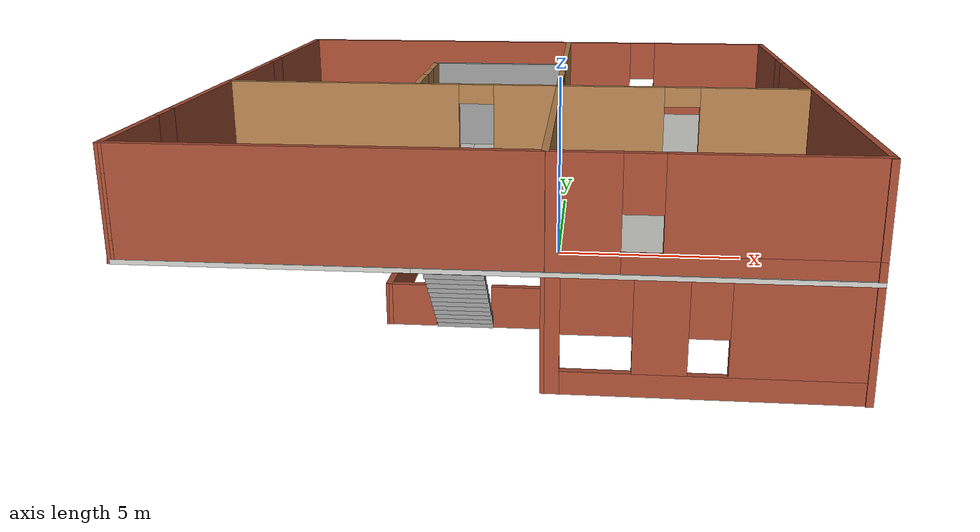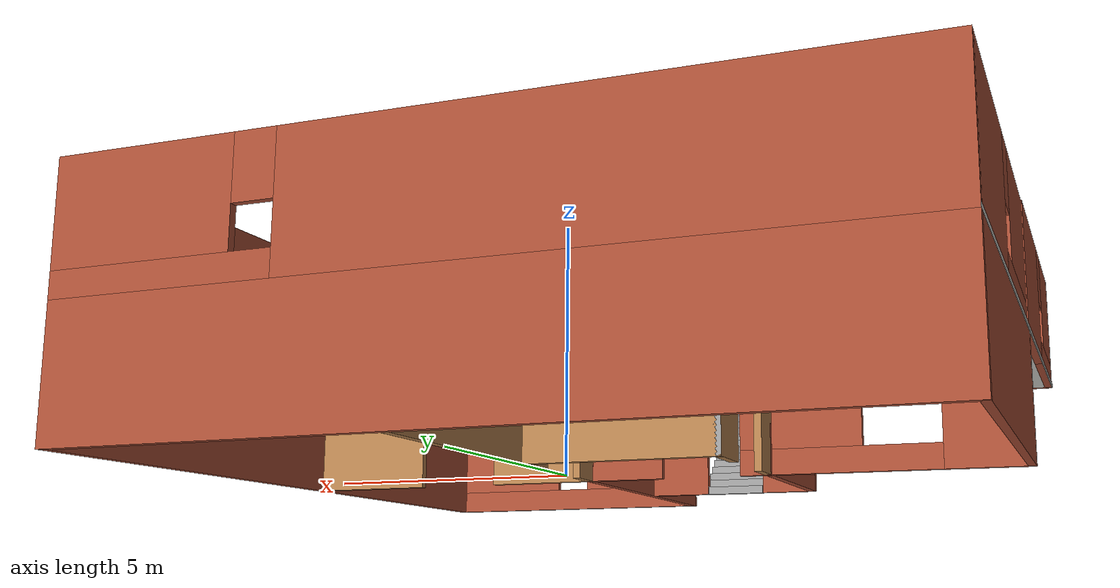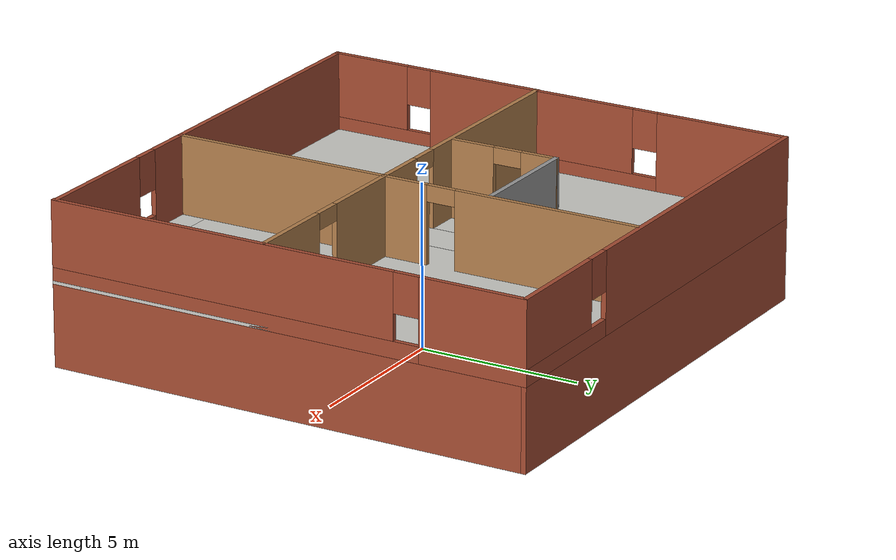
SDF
<?xml version='1.0'?>
<sdf version='1.6'>
  <model name='house'>
    <pose frame=''>-1.15366 -0.572231 0 0 -0 0</pose>
    <link name='Floor_3'>
      <pose frame=''>-9.3e-05 -1e-06 2.5 0 -0 0</pose>
      <visual name='Floor_3_Visual_0'>
        <pose frame=''>-4.52227 0 0.05 0 -0 0</pose>
        <geometry>
          <box>
            <size>6.13998 15.2013 0.1</size>
          </box>
        </geometry>
        <material>
          <script>
            <uri>file://media/materials/scripts/gazebo.material</uri>
            <name>Gazebo/CeilingTiled</name>
          </script>
          <ambient>1 1 1 1</ambient>
        </material>
        <meta>
          <layer>1</layer>
        </meta>
      </visual>
      <collision name='Floor_3_Collision_0'>
        <geometry>
          <box>
            <size>6.13998 15.2013 0.1</size>
          </box>
        </geometry>
        <pose frame=''>-4.52227 0 0.05 0 -0 0</pose>
      </collision>
      <visual name='Floor_3_Visual_1'>
        <pose frame=''>3.06999 -7.13149 0.05 0 -0 0</pose>
        <geometry>
          <box>
            <size>9.04454 0.938354 0.1</size>
          </box>
        </geometry>
        <material>
          <script>
            <uri>file://media/materials/scripts/gazebo.material</uri>
            <name>Gazebo/CeilingTiled</name>
          </script>
          <ambient>1 1 1 1</ambient>
        </material>
        <meta>
          <layer>1</layer>
        </meta>
      </visual>
      <collision name='Floor_3_Collision_1'>
        <geometry>
          <box>
            <size>9.04454 0.938354 0.1</size>
          </box>
        </geometry>
        <pose frame=''>3.06999 -7.13149 0.05 0 -0 0</pose>
      </collision>
      <visual name='Floor_3_Visual_2'>
        <pose frame=''>3.71499 0.469177 0.05 0 -0 0</pose>
        <geometry>
          <box>
            <size>7.75454 14.263 0.1</size>
          </box>
        </geometry>
        <material>
          <script>
            <uri>file://media/materials/scripts/gazebo.material</uri>
            <name>Gazebo/CeilingTiled</name>
          </script>
          <ambient>1 1 1 1</ambient>
        </material>
        <meta>
          <layer>1</layer>
        </meta>
      </visual>
      <collision name='Floor_3_Collision_2'>
        <geometry>
          <box>
            <size>7.75454 14.263 0.1</size>
          </box>
        </geometry>
        <pose frame=''>3.71499 0.469177 0.05 0 -0 0</pose>
      </collision>
      <visual name='Floor_3_Visual_3'>
        <pose frame=''>-0.807284 1.5911 0.05 0 -0 0</pose>
        <geometry>
          <box>
            <size>1.29 12.0191 0.1</size>
          </box>
        </geometry>
        <material>
          <script>
            <uri>file://media/materials/scripts/gazebo.material</uri>
            <name>Gazebo/CeilingTiled</name>
          </script>
          <ambient>1 1 1 1</ambient>
        </material>
        <meta>
          <layer>1</layer>
        </meta>
      </visual>
      <collision name='Floor_3_Collision_3'>
        <geometry>
          <box>
            <size>1.29 12.0191 0.1</size>
          </box>
        </geometry>
        <pose frame=''>-0.807284 1.5911 0.05 0 -0 0</pose>
      </collision>
    </link>
    <link name='Stairs_1'>
      <visual name='Stairs_1_Visual_0'>
        <pose frame=''>-0.807377 -4.49326 0.083333 0 -0 0</pose>
        <geometry>
          <box>
            <size>1.29 0.14959 0.166667</size>
          </box>
        </geometry>
        <material>
          <script>
            <uri>file://media/materials/scripts/gazebo.material</uri>
            <name>Gazebo/Grey</name>
          </script>
          <ambient>1 1 1 1</ambient>
        </material>
        <meta>
          <layer>0</layer>
        </meta>
      </visual>
      <collision name='Stairs_1_Collision_0'>
        <geometry>
          <box>
            <size>1.29 0.14959 0.166667</size>
          </box>
        </geometry>
        <pose frame=''>-0.807377 -4.49326 0.083333 0 -0 0</pose>
      </collision>
      <visual name='Stairs_1_Visual_1'>
        <pose frame=''>-0.807377 -4.64285 0.25 0 -0 0</pose>
        <geometry>
          <box>
            <size>1.29 0.14959 0.166667</size>
          </box>
        </geometry>
        <material>
          <script>
            <uri>file://media/materials/scripts/gazebo.material</uri>
            <name>Gazebo/Grey</name>
          </script>
          <ambient>1 1 1 1</ambient>
        </material>
        <meta>
          <layer>0</layer>
        </meta>
      </visual>
      <collision name='Stairs_1_Collision_1'>
        <geometry>
          <box>
            <size>1.29 0.14959 0.166667</size>
          </box>
        </geometry>
        <pose frame=''>-0.807377 -4.64285 0.25 0 -0 0</pose>
      </collision>
      <visual name='Stairs_1_Visual_2'>
        <pose frame=''>-0.807377 -4.79244 0.416667 0 -0 0</pose>
        <geometry>
          <box>
            <size>1.29 0.14959 0.166667</size>
          </box>
        </geometry>
        <material>
          <script>
            <uri>file://media/materials/scripts/gazebo.material</uri>
            <name>Gazebo/Grey</name>
          </script>
          <ambient>1 1 1 1</ambient>
        </material>
        <meta>
          <layer>0</layer>
        </meta>
      </visual>
      <collision name='Stairs_1_Collision_2'>
        <geometry>
          <box>
            <size>1.29 0.14959 0.166667</size>
          </box>
        </geometry>
        <pose frame=''>-0.807377 -4.79244 0.416667 0 -0 0</pose>
      </collision>
      <visual name='Stairs_1_Visual_3'>
        <pose frame=''>-0.807377 -4.94203 0.583333 0 -0 0</pose>
        <geometry>
          <box>
            <size>1.29 0.14959 0.166667</size>
          </box>
        </geometry>
        <material>
          <script>
            <uri>file://media/materials/scripts/gazebo.material</uri>
            <name>Gazebo/Grey</name>
          </script>
          <ambient>1 1 1 1</ambient>
        </material>
        <meta>
          <layer>0</layer>
        </meta>
      </visual>
      <collision name='Stairs_1_Collision_3'>
        <geometry>
          <box>
            <size>1.29 0.14959 0.166667</size>
          </box>
        </geometry>
        <pose frame=''>-0.807377 -4.94203 0.583333 0 -0 0</pose>
      </collision>
      <visual name='Stairs_1_Visual_4'>
        <pose frame=''>-0.807377 -5.09162 0.75 0 -0 0</pose>
        <geometry>
          <box>
            <size>1.29 0.14959 0.166667</size>
          </box>
        </geometry>
        <material>
          <script>
            <uri>file://media/materials/scripts/gazebo.material</uri>
            <name>Gazebo/Grey</name>
          </script>
          <ambient>1 1 1 1</ambient>
        </material>
        <meta>
          <layer>0</layer>
        </meta>
      </visual>
      <collision name='Stairs_1_Collision_4'>
        <geometry>
          <box>
            <size>1.29 0.14959 0.166667</size>
          </box>
        </geometry>
        <pose frame=''>-0.807377 -5.09162 0.75 0 -0 0</pose>
      </collision>
      <visual name='Stairs_1_Visual_5'>
        <pose frame=''>-0.807377 -5.24121 0.916667 0 -0 0</pose>
        <geometry>
          <box>
            <size>1.29 0.14959 0.166667</size>
          </box>
        </geometry>
        <material>
          <script>
            <uri>file://media/materials/scripts/gazebo.material</uri>
            <name>Gazebo/Grey</name>
          </script>
          <ambient>1 1 1 1</ambient>
        </material>
        <meta>
          <layer>0</layer>
        </meta>
      </visual>
      <collision name='Stairs_1_Collision_5'>
        <geometry>
          <box>
            <size>1.29 0.14959 0.166667</size>
          </box>
        </geometry>
        <pose frame=''>-0.807377 -5.24121 0.916667 0 -0 0</pose>
      </collision>
      <visual name='Stairs_1_Visual_6'>
        <pose frame=''>-0.807377 -5.3908 1.08333 0 -0 0</pose>
        <geometry>
          <box>
            <size>1.29 0.14959 0.166667</size>
          </box>
        </geometry>
        <material>
          <script>
            <uri>file://media/materials/scripts/gazebo.material</uri>
            <name>Gazebo/Grey</name>
          </script>
          <ambient>1 1 1 1</ambient>
        </material>
        <meta>
          <layer>0</layer>
        </meta>
      </visual>
      <collision name='Stairs_1_Collision_6'>
        <geometry>
          <box>
            <size>1.29 0.14959 0.166667</size>
          </box>
        </geometry>
        <pose frame=''>-0.807377 -5.3908 1.08333 0 -0 0</pose>
      </collision>
      <visual name='Stairs_1_Visual_7'>
        <pose frame=''>-0.807377 -5.54039 1.25 0 -0 0</pose>
        <geometry>
          <box>
            <size>1.29 0.14959 0.166667</size>
          </box>
        </geometry>
        <material>
          <script>
            <uri>file://media/materials/scripts/gazebo.material</uri>
            <name>Gazebo/Grey</name>
          </script>
          <ambient>1 1 1 1</ambient>
        </material>
        <meta>
          <layer>0</layer>
        </meta>
      </visual>
      <collision name='Stairs_1_Collision_7'>
        <geometry>
          <box>
            <size>1.29 0.14959 0.166667</size>
          </box>
        </geometry>
        <pose frame=''>-0.807377 -5.54039 1.25 0 -0 0</pose>
      </collision>
      <visual name='Stairs_1_Visual_8'>
        <pose frame=''>-0.807377 -5.68998 1.41667 0 -0 0</pose>
        <geometry>
          <box>
            <size>1.29 0.14959 0.166667</size>
          </box>
        </geometry>
        <material>
          <script>
            <uri>file://media/materials/scripts/gazebo.material</uri>
            <name>Gazebo/Grey</name>
          </script>
          <ambient>1 1 1 1</ambient>
        </material>
        <meta>
          <layer>0</layer>
        </meta>
      </visual>
      <collision name='Stairs_1_Collision_8'>
        <geometry>
          <box>
            <size>1.29 0.14959 0.166667</size>
          </box>
        </geometry>
        <pose frame=''>-0.807377 -5.68998 1.41667 0 -0 0</pose>
      </collision>
      <visual name='Stairs_1_Visual_9'>
        <pose frame=''>-0.807377 -5.83957 1.58333 0 -0 0</pose>
        <geometry>
          <box>
            <size>1.29 0.14959 0.166667</size>
          </box>
        </geometry>
        <material>
          <script>
            <uri>file://media/materials/scripts/gazebo.material</uri>
            <name>Gazebo/Grey</name>
          </script>
          <ambient>1 1 1 1</ambient>
        </material>
        <meta>
          <layer>0</layer>
        </meta>
      </visual>
      <collision name='Stairs_1_Collision_9'>
        <geometry>
          <box>
            <size>1.29 0.14959 0.166667</size>
          </box>
        </geometry>
        <pose frame=''>-0.807377 -5.83957 1.58333 0 -0 0</pose>
      </collision>
      <visual name='Stairs_1_Visual_10'>
        <pose frame=''>-0.807377 -5.98916 1.75 0 -0 0</pose>
        <geometry>
          <box>
            <size>1.29 0.14959 0.166667</size>
          </box>
        </geometry>
        <material>
          <script>
            <uri>file://media/materials/scripts/gazebo.material</uri>
            <name>Gazebo/Grey</name>
          </script>
          <ambient>1 1 1 1</ambient>
        </material>
        <meta>
          <layer>0</layer>
        </meta>
      </visual>
      <collision name='Stairs_1_Collision_10'>
        <geometry>
          <box>
            <size>1.29 0.14959 0.166667</size>
          </box>
        </geometry>
        <pose frame=''>-0.807377 -5.98916 1.75 0 -0 0</pose>
      </collision>
      <visual name='Stairs_1_Visual_11'>
        <pose frame=''>-0.807377 -6.13875 1.91667 0 -0 0</pose>
        <geometry>
          <box>
            <size>1.29 0.14959 0.166667</size>
          </box>
        </geometry>
        <material>
          <script>
            <uri>file://media/materials/scripts/gazebo.material</uri>
            <name>Gazebo/Grey</name>
          </script>
          <ambient>1 1 1 1</ambient>
        </material>
        <meta>
          <layer>0</layer>
        </meta>
      </visual>
      <collision name='Stairs_1_Collision_11'>
        <geometry>
          <box>
            <size>1.29 0.14959 0.166667</size>
          </box>
        </geometry>
        <pose frame=''>-0.807377 -6.13875 1.91667 0 -0 0</pose>
      </collision>
      <visual name='Stairs_1_Visual_12'>
        <pose frame=''>-0.807377 -6.28834 2.08333 0 -0 0</pose>
        <geometry>
          <box>
            <size>1.29 0.14959 0.166667</size>
          </box>
        </geometry>
        <material>
          <script>
            <uri>file://media/materials/scripts/gazebo.material</uri>
            <name>Gazebo/Grey</name>
          </script>
          <ambient>1 1 1 1</ambient>
        </material>
        <meta>
          <layer>0</layer>
        </meta>
      </visual>
      <collision name='Stairs_1_Collision_12'>
        <geometry>
          <box>
            <size>1.29 0.14959 0.166667</size>
          </box>
        </geometry>
        <pose frame=''>-0.807377 -6.28834 2.08333 0 -0 0</pose>
      </collision>
      <visual name='Stairs_1_Visual_13'>
        <pose frame=''>-0.807377 -6.43793 2.25 0 -0 0</pose>
        <geometry>
          <box>
            <size>1.29 0.14959 0.166667</size>
          </box>
        </geometry>
        <material>
          <script>
            <uri>file://media/materials/scripts/gazebo.material</uri>
            <name>Gazebo/Grey</name>
          </script>
          <ambient>1 1 1 1</ambient>
        </material>
        <meta>
          <layer>0</layer>
        </meta>
      </visual>
      <collision name='Stairs_1_Collision_13'>
        <geometry>
          <box>
            <size>1.29 0.14959 0.166667</size>
          </box>
        </geometry>
        <pose frame=''>-0.807377 -6.43793 2.25 0 -0 0</pose>
      </collision>
      <visual name='Stairs_1_Visual_14'>
        <pose frame=''>-0.807377 -6.58752 2.41667 0 -0 0</pose>
        <geometry>
          <box>
            <size>1.29 0.14959 0.166667</size>
          </box>
        </geometry>
        <material>
          <script>
            <uri>file://media/materials/scripts/gazebo.material</uri>
            <name>Gazebo/Grey</name>
          </script>
          <ambient>1 1 1 1</ambient>
        </material>
        <meta>
          <layer>0</layer>
        </meta>
      </visual>
      <collision name='Stairs_1_Collision_14'>
        <geometry>
          <box>
            <size>1.29 0.14959 0.166667</size>
          </box>
        </geometry>
        <pose frame=''>-0.807377 -6.58752 2.41667 0 -0 0</pose>
      </collision>
    </link>
    <link name='Wall_114'>
      <pose frame=''>1.15021 3.37342 0 0 -0 1.5708</pose>
      <visual name='Wall_114_Visual_0'>
        <pose frame=''>-3.70499 0 1.25 0 -0 0</pose>
        <geometry>
          <box>
            <size>0.840021 0.15 2.5</size>
          </box>
        </geometry>
        <material>
          <script>
            <uri>file://media/materials/scripts/gazebo.material</uri>
            <name>Gazebo/Wood</name>
          </script>
          <ambient>1 1 1 1</ambient>
        </material>
        <meta>
          <layer>0</layer>
        </meta>
      </visual>
      <collision name='Wall_114_Collision_0'>
        <geometry>
          <box>
            <size>0.840021 0.15 2.5</size>
          </box>
        </geometry>
        <pose frame=''>-3.70499 0 1.25 0 -0 0</pose>
      </collision>
      <visual name='Wall_114_Visual_1'>
        <pose frame=''>1.19975 0 1.25 0 -0 0</pose>
        <geometry>
          <box>
            <size>5.8505 0.15 2.5</size>
          </box>
        </geometry>
        <material>
          <script>
            <uri>file://media/materials/scripts/gazebo.material</uri>
            <name>Gazebo/Wood</name>
          </script>
          <ambient>1 1 1 1</ambient>
        </material>
        <meta>
          <layer>0</layer>
        </meta>
      </visual>
      <collision name='Wall_114_Collision_1'>
        <geometry>
          <box>
            <size>5.8505 0.15 2.5</size>
          </box>
        </geometry>
        <pose frame=''>1.19975 0 1.25 0 -0 0</pose>
      </collision>
      <visual name='Wall_114_Visual_2'>
        <pose frame=''>-2.50524 0 2.25 0 -0 0</pose>
        <geometry>
          <box>
            <size>1.55948 0.15 0.5</size>
          </box>
        </geometry>
        <material>
          <script>
            <uri>file://media/materials/scripts/gazebo.material</uri>
            <name>Gazebo/Wood</name>
          </script>
          <ambient>1 1 1 1</ambient>
        </material>
        <meta>
          <layer>0</layer>
        </meta>
      </visual>
      <collision name='Wall_114_Collision_2'>
        <geometry>
          <box>
            <size>1.55948 0.15 0.5</size>
          </box>
        </geometry>
        <pose frame=''>-2.50524 0 2.25 0 -0 0</pose>
      </collision>
    </link>
    <link name='Wall_116'>
      <collision name='Wall_116_Collision'>
        <geometry>
          <box>
            <size>6.96461 0.15 2.5</size>
          </box>
        </geometry>
        <pose frame=''>0 0 1.25 0 -0 0</pose>
      </collision>
      <visual name='Wall_116_Visual'>
        <pose frame=''>0 0 1.25 0 -0 0</pose>
        <geometry>
          <box>
            <size>6.96461 0.15 2.5</size>
          </box>
        </geometry>
        <material>
          <script>
            <uri>file://media/materials/scripts/gazebo.material</uri>
            <name>Gazebo/Bricks</name>
          </script>
          <ambient>1 1 1 1</ambient>
        </material>
        <meta>
          <layer>0</layer>
        </meta>
      </visual>
      <pose frame=''>1.15469 -4.08388 0 0 -0 -1.56948</pose>
    </link>
    <link name='Wall_120'>
      <collision name='Wall_120_Collision'>
        <geometry>
          <box>
            <size>15.2 0.15 2.5</size>
          </box>
        </geometry>
        <pose frame=''>0 0 1.25 0 -0 0</pose>
      </collision>
      <visual name='Wall_120_Visual'>
        <pose frame=''>0 0 1.25 0 -0 0</pose>
        <geometry>
          <box>
            <size>15.2 0.15 2.5</size>
          </box>
        </geometry>
        <material>
          <script>
            <uri>file://media/materials/scripts/gazebo.material</uri>
            <name>Gazebo/Bricks</name>
          </script>
          <ambient>1 1 1 1</ambient>
        </material>
        <meta>
          <layer>0</layer>
        </meta>
      </visual>
      <pose frame=''>7.51717 0.000817 0 0 -0 -1.5708</pose>
    </link>
    <link name='Wall_122'>
      <pose frame=''>4.33417 -7.49117 0 0 -0 0</pose>
      <visual name='Wall_122_Visual_0'>
        <pose frame=''>-3.05675 0 1.25 0 -0 0</pose>
        <geometry>
          <box>
            <size>0.386497 0.15 2.5</size>
          </box>
        </geometry>
        <material>
          <script>
            <uri>file://media/materials/scripts/gazebo.material</uri>
            <name>Gazebo/Bricks</name>
          </script>
          <ambient>1 1 1 1</ambient>
        </material>
        <meta>
          <layer>0</layer>
        </meta>
      </visual>
      <collision name='Wall_122_Collision_0'>
        <geometry>
          <box>
            <size>0.386497 0.15 2.5</size>
          </box>
        </geometry>
        <pose frame=''>-3.05675 0 1.25 0 -0 0</pose>
      </collision>
      <visual name='Wall_122_Visual_1'>
        <pose frame=''>0.193248 0 0.25 0 -0 0</pose>
        <geometry>
          <box>
            <size>6.1135 0.15 0.5</size>
          </box>
        </geometry>
        <material>
          <script>
            <uri>file://media/materials/scripts/gazebo.material</uri>
            <name>Gazebo/Bricks</name>
          </script>
          <ambient>1 1 1 1</ambient>
        </material>
        <meta>
          <layer>0</layer>
        </meta>
      </visual>
      <collision name='Wall_122_Collision_1'>
        <geometry>
          <box>
            <size>6.1135 0.15 0.5</size>
          </box>
        </geometry>
        <pose frame=''>0.193248 0 0.25 0 -0 0</pose>
      </collision>
      <visual name='Wall_122_Visual_2'>
        <pose frame=''>-0.897711 0 1.5 0 -0 0</pose>
        <geometry>
          <box>
            <size>1.09151 0.15 2</size>
          </box>
        </geometry>
        <material>
          <script>
            <uri>file://media/materials/scripts/gazebo.material</uri>
            <name>Gazebo/Bricks</name>
          </script>
          <ambient>1 1 1 1</ambient>
        </material>
        <meta>
          <layer>0</layer>
        </meta>
      </visual>
      <collision name='Wall_122_Collision_2'>
        <geometry>
          <box>
            <size>1.09151 0.15 2</size>
          </box>
        </geometry>
        <pose frame=''>-0.897711 0 1.5 0 -0 0</pose>
      </collision>
      <visual name='Wall_122_Visual_3'>
        <pose frame=''>1.84902 0 1.5 0 -0 0</pose>
        <geometry>
          <box>
            <size>2.80196 0.15 2</size>
          </box>
        </geometry>
        <material>
          <script>
            <uri>file://media/materials/scripts/gazebo.material</uri>
            <name>Gazebo/Bricks</name>
          </script>
          <ambient>1 1 1 1</ambient>
        </material>
        <meta>
          <layer>0</layer>
        </meta>
      </visual>
      <collision name='Wall_122_Collision_3'>
        <geometry>
          <box>
            <size>2.80196 0.15 2</size>
          </box>
        </geometry>
        <pose frame=''>1.84902 0 1.5 0 -0 0</pose>
      </collision>
      <visual name='Wall_122_Visual_4'>
        <pose frame=''>-2.15348 0 1.9 0 -0 0</pose>
        <geometry>
          <box>
            <size>1.42004 0.15 1.2</size>
          </box>
        </geometry>
        <material>
          <script>
            <uri>file://media/materials/scripts/gazebo.material</uri>
            <name>Gazebo/Bricks</name>
          </script>
          <ambient>1 1 1 1</ambient>
        </material>
        <meta>
          <layer>0</layer>
        </meta>
      </visual>
      <collision name='Wall_122_Collision_4'>
        <geometry>
          <box>
            <size>1.42004 0.15 1.2</size>
          </box>
        </geometry>
        <pose frame=''>-2.15348 0 1.9 0 -0 0</pose>
      </collision>
      <visual name='Wall_122_Visual_5'>
        <pose frame=''>0.048043 0 1.9 0 -0 0</pose>
        <geometry>
          <box>
            <size>0.8 0.15 1.2</size>
          </box>
        </geometry>
        <material>
          <script>
            <uri>file://media/materials/scripts/gazebo.material</uri>
            <name>Gazebo/Bricks</name>
          </script>
          <ambient>1 1 1 1</ambient>
        </material>
        <meta>
          <layer>0</layer>
        </meta>
      </visual>
      <collision name='Wall_122_Collision_5'>
        <geometry>
          <box>
            <size>0.8 0.15 1.2</size>
          </box>
        </geometry>
        <pose frame=''>0.048043 0 1.9 0 -0 0</pose>
      </collision>
    </link>
    <link name='Wall_124'>
      <pose frame=''>-3.17768 -0.706223 0 0 -0 0.006848</pose>
      <visual name='Wall_124_Visual_0'>
        <pose frame=''>-3.57864 0 1.25 0 -0 0</pose>
        <geometry>
          <box>
            <size>1.64869 0.15 2.5</size>
          </box>
        </geometry>
        <material>
          <script>
            <uri>file://media/materials/scripts/gazebo.material</uri>
            <name>Gazebo/Bricks</name>
          </script>
          <ambient>1 1 1 1</ambient>
        </material>
        <meta>
          <layer>0</layer>
        </meta>
      </visual>
      <collision name='Wall_124_Collision_0'>
        <geometry>
          <box>
            <size>1.64869 0.15 2.5</size>
          </box>
        </geometry>
        <pose frame=''>-3.57864 0 1.25 0 -0 0</pose>
      </collision>
      <visual name='Wall_124_Visual_1'>
        <pose frame=''>3.58672 0 1.25 0 -0 0</pose>
        <geometry>
          <box>
            <size>1.63254 0.15 2.5</size>
          </box>
        </geometry>
        <material>
          <script>
            <uri>file://media/materials/scripts/gazebo.material</uri>
            <name>Gazebo/Bricks</name>
          </script>
          <ambient>1 1 1 1</ambient>
        </material>
        <meta>
          <layer>0</layer>
        </meta>
      </visual>
      <collision name='Wall_124_Collision_1'>
        <geometry>
          <box>
            <size>1.63254 0.15 2.5</size>
          </box>
        </geometry>
        <pose frame=''>3.58672 0 1.25 0 -0 0</pose>
      </collision>
      <visual name='Wall_124_Visual_2'>
        <pose frame=''>-0.796847 0 0.25 0 -0 0</pose>
        <geometry>
          <box>
            <size>3.91491 0.15 0.5</size>
          </box>
        </geometry>
        <material>
          <script>
            <uri>file://media/materials/scripts/gazebo.material</uri>
            <name>Gazebo/Bricks</name>
          </script>
          <ambient>1 1 1 1</ambient>
        </material>
        <meta>
          <layer>0</layer>
        </meta>
      </visual>
      <collision name='Wall_124_Collision_2'>
        <geometry>
          <box>
            <size>3.91491 0.15 0.5</size>
          </box>
        </geometry>
        <pose frame=''>-0.796847 0 0.25 0 -0 0</pose>
      </collision>
      <visual name='Wall_124_Visual_3'>
        <pose frame=''>-0.041923 0 1.5 0 -0 0</pose>
        <geometry>
          <box>
            <size>2.40506 0.15 2</size>
          </box>
        </geometry>
        <material>
          <script>
            <uri>file://media/materials/scripts/gazebo.material</uri>
            <name>Gazebo/Bricks</name>
          </script>
          <ambient>1 1 1 1</ambient>
        </material>
        <meta>
          <layer>0</layer>
        </meta>
      </visual>
      <collision name='Wall_124_Collision_3'>
        <geometry>
          <box>
            <size>2.40506 0.15 2</size>
          </box>
        </geometry>
        <pose frame=''>-0.041923 0 1.5 0 -0 0</pose>
      </collision>
      <visual name='Wall_124_Visual_4'>
        <pose frame=''>-1.99938 0 1.9 0 -0 0</pose>
        <geometry>
          <box>
            <size>1.50985 0.15 1.2</size>
          </box>
        </geometry>
        <material>
          <script>
            <uri>file://media/materials/scripts/gazebo.material</uri>
            <name>Gazebo/Bricks</name>
          </script>
          <ambient>1 1 1 1</ambient>
        </material>
        <meta>
          <layer>0</layer>
        </meta>
      </visual>
      <collision name='Wall_124_Collision_4'>
        <geometry>
          <box>
            <size>1.50985 0.15 1.2</size>
          </box>
        </geometry>
        <pose frame=''>-1.99938 0 1.9 0 -0 0</pose>
      </collision>
      <visual name='Wall_124_Visual_5'>
        <pose frame=''>1.96553 0 2.25 0 -0 0</pose>
        <geometry>
          <box>
            <size>1.60985 0.15 0.5</size>
          </box>
        </geometry>
        <material>
          <script>
            <uri>file://media/materials/scripts/gazebo.material</uri>
            <name>Gazebo/Bricks</name>
          </script>
          <ambient>1 1 1 1</ambient>
        </material>
        <meta>
          <layer>0</layer>
        </meta>
      </visual>
      <collision name='Wall_124_Collision_5'>
        <geometry>
          <box>
            <size>1.60985 0.15 0.5</size>
          </box>
        </geometry>
        <pose frame=''>1.96553 0 2.25 0 -0 0</pose>
      </collision>
    </link>
    <link name='Wall_125'>
      <pose frame=''>4.32521 -0.676584 0 0 -0 0</pose>
      <visual name='Wall_125_Visual_0'>
        <pose frame=''>-2.13332 0 1.25 0 -0 0</pose>
        <geometry>
          <box>
            <size>2.23335 0.15 2.5</size>
          </box>
        </geometry>
        <material>
          <script>
            <uri>file://media/materials/scripts/gazebo.material</uri>
            <name>Gazebo/Wood</name>
          </script>
          <ambient>1 1 1 1</ambient>
        </material>
        <meta>
          <layer>0</layer>
        </meta>
      </visual>
      <collision name='Wall_125_Collision_0'>
        <geometry>
          <box>
            <size>2.23335 0.15 2.5</size>
          </box>
        </geometry>
        <pose frame=''>-2.13332 0 1.25 0 -0 0</pose>
      </collision>
      <visual name='Wall_125_Visual_1'>
        <pose frame=''>1.95668 0 1.25 0 -0 0</pose>
        <geometry>
          <box>
            <size>2.58665 0.15 2.5</size>
          </box>
        </geometry>
        <material>
          <script>
            <uri>file://media/materials/scripts/gazebo.material</uri>
            <name>Gazebo/Wood</name>
          </script>
          <ambient>1 1 1 1</ambient>
        </material>
        <meta>
          <layer>0</layer>
        </meta>
      </visual>
      <collision name='Wall_125_Collision_1'>
        <geometry>
          <box>
            <size>2.58665 0.15 2.5</size>
          </box>
        </geometry>
        <pose frame=''>1.95668 0 1.25 0 -0 0</pose>
      </collision>
      <visual name='Wall_125_Visual_2'>
        <pose frame=''>-0.176646 0 2.25 0 -0 0</pose>
        <geometry>
          <box>
            <size>1.68 0.15 0.5</size>
          </box>
        </geometry>
        <material>
          <script>
            <uri>file://media/materials/scripts/gazebo.material</uri>
            <name>Gazebo/Wood</name>
          </script>
          <ambient>1 1 1 1</ambient>
        </material>
        <meta>
          <layer>0</layer>
        </meta>
      </visual>
      <collision name='Wall_125_Collision_2'>
        <geometry>
          <box>
            <size>1.68 0.15 0.5</size>
          </box>
        </geometry>
        <pose frame=''>-0.176646 0 2.25 0 -0 0</pose>
      </collision>
    </link>
    <link name='Wall_127'>
      <pose frame=''>5.2e-05 7.52582 2.5 0 -0 0</pose>
      <visual name='Wall_127_Visual_0'>
        <pose frame=''>-2.18128 0 1.25 0 -0 0</pose>
        <geometry>
          <box>
            <size>10.8217 0.15 2.5</size>
          </box>
        </geometry>
        <material>
          <script>
            <uri>file://media/materials/scripts/gazebo.material</uri>
            <name>Gazebo/Bricks</name>
          </script>
          <ambient>1 1 1 1</ambient>
        </material>
        <meta>
          <layer>1</layer>
        </meta>
      </visual>
      <collision name='Wall_127_Collision_0'>
        <geometry>
          <box>
            <size>10.8217 0.15 2.5</size>
          </box>
        </geometry>
        <pose frame=''>-2.18128 0 1.25 0 -0 0</pose>
      </collision>
      <visual name='Wall_127_Visual_1'>
        <pose frame=''>5.41083 0 0.25 0 -0 0</pose>
        <geometry>
          <box>
            <size>4.36256 0.15 0.5</size>
          </box>
        </geometry>
        <material>
          <script>
            <uri>file://media/materials/scripts/gazebo.material</uri>
            <name>Gazebo/Bricks</name>
          </script>
          <ambient>1 1 1 1</ambient>
        </material>
        <meta>
          <layer>1</layer>
        </meta>
      </visual>
      <collision name='Wall_127_Collision_1'>
        <geometry>
          <box>
            <size>4.36256 0.15 0.5</size>
          </box>
        </geometry>
        <pose frame=''>5.41083 0 0.25 0 -0 0</pose>
      </collision>
      <visual name='Wall_127_Visual_2'>
        <pose frame=''>5.81083 0 1.5 0 -0 0</pose>
        <geometry>
          <box>
            <size>3.56256 0.15 2</size>
          </box>
        </geometry>
        <material>
          <script>
            <uri>file://media/materials/scripts/gazebo.material</uri>
            <name>Gazebo/Bricks</name>
          </script>
          <ambient>1 1 1 1</ambient>
        </material>
        <meta>
          <layer>1</layer>
        </meta>
      </visual>
      <collision name='Wall_127_Collision_2'>
        <geometry>
          <box>
            <size>3.56256 0.15 2</size>
          </box>
        </geometry>
        <pose frame=''>5.81083 0 1.5 0 -0 0</pose>
      </collision>
      <visual name='Wall_127_Visual_3'>
        <pose frame=''>3.62955 0 1.9 0 -0 0</pose>
        <geometry>
          <box>
            <size>0.8 0.15 1.2</size>
          </box>
        </geometry>
        <material>
          <script>
            <uri>file://media/materials/scripts/gazebo.material</uri>
            <name>Gazebo/Bricks</name>
          </script>
          <ambient>1 1 1 1</ambient>
        </material>
        <meta>
          <layer>1</layer>
        </meta>
      </visual>
      <collision name='Wall_127_Collision_3'>
        <geometry>
          <box>
            <size>0.8 0.15 1.2</size>
          </box>
        </geometry>
        <pose frame=''>3.62955 0 1.9 0 -0 0</pose>
      </collision>
    </link>
    <link name='Wall_128'>
      <pose frame=''>-2.55591 1.06711 2.5 0 -0 1.58461</pose>
      <visual name='Wall_128_Visual_0'>
        <pose frame=''>-1.02816 0 1.25 0 -0 0</pose>
        <geometry>
          <box>
            <size>1.44368 0.15 2.5</size>
          </box>
        </geometry>
        <material>
          <script>
            <uri>file://media/materials/scripts/gazebo.material</uri>
            <name>Gazebo/Wood</name>
          </script>
          <ambient>1 1 1 1</ambient>
        </material>
        <meta>
          <layer>1</layer>
        </meta>
      </visual>
      <collision name='Wall_128_Collision_0'>
        <geometry>
          <box>
            <size>1.44368 0.15 2.5</size>
          </box>
        </geometry>
        <pose frame=''>-1.02816 0 1.25 0 -0 0</pose>
      </collision>
      <visual name='Wall_128_Visual_1'>
        <pose frame=''>1.17184 0 1.25 0 -0 0</pose>
        <geometry>
          <box>
            <size>1.15632 0.15 2.5</size>
          </box>
        </geometry>
        <material>
          <script>
            <uri>file://media/materials/scripts/gazebo.material</uri>
            <name>Gazebo/Wood</name>
          </script>
          <ambient>1 1 1 1</ambient>
        </material>
        <meta>
          <layer>1</layer>
        </meta>
      </visual>
      <collision name='Wall_128_Collision_1'>
        <geometry>
          <box>
            <size>1.15632 0.15 2.5</size>
          </box>
        </geometry>
        <pose frame=''>1.17184 0 1.25 0 -0 0</pose>
      </collision>
      <visual name='Wall_128_Visual_2'>
        <pose frame=''>0.143677 0 2.25 0 -0 0</pose>
        <geometry>
          <box>
            <size>0.9 0.15 0.5</size>
          </box>
        </geometry>
        <material>
          <script>
            <uri>file://media/materials/scripts/gazebo.material</uri>
            <name>Gazebo/Wood</name>
          </script>
          <ambient>1 1 1 1</ambient>
        </material>
        <meta>
          <layer>1</layer>
        </meta>
      </visual>
      <collision name='Wall_128_Collision_2'>
        <geometry>
          <box>
            <size>0.9 0.15 0.5</size>
          </box>
        </geometry>
        <pose frame=''>0.143677 0 2.25 0 -0 0</pose>
      </collision>
    </link>
    <link name='Wall_129'>
      <collision name='Wall_129_Collision'>
        <geometry>
          <box>
            <size>0.15 0.15 2.5</size>
          </box>
        </geometry>
        <pose frame=''>0 0 1.25 0 -0 0</pose>
      </collision>
      <visual name='Wall_129_Visual'>
        <pose frame=''>0 0 1.25 0 -0 0</pose>
        <geometry>
          <box>
            <size>0.15 0.15 2.5</size>
          </box>
        </geometry>
        <material>
          <script>
            <uri>file://media/materials/scripts/gazebo.material</uri>
            <name>Gazebo/Grey</name>
          </script>
          <ambient>1 1 1 1</ambient>
        </material>
        <meta>
          <layer>1</layer>
        </meta>
      </visual>
      <pose frame=''>-2.57904 2.74211 2.5 0 -0 0</pose>
    </link>
    <link name='Wall_130'>
      <collision name='Wall_130_Collision'>
        <geometry>
          <box>
            <size>3.75 0.15 2.5</size>
          </box>
        </geometry>
        <pose frame=''>0 0 1.25 0 -0 0</pose>
      </collision>
      <visual name='Wall_130_Visual'>
        <pose frame=''>0 0 1.25 0 -0 0</pose>
        <geometry>
          <box>
            <size>3.75 0.15 2.5</size>
          </box>
        </geometry>
        <material>
          <script>
            <uri>file://media/materials/scripts/gazebo.material</uri>
            <name>Gazebo/Grey</name>
          </script>
          <ambient>1 1 1 1</ambient>
        </material>
        <meta>
          <layer>1</layer>
        </meta>
      </visual>
      <pose frame=''>-0.779041 2.74211 2.5 0 -0 0</pose>
    </link>
    <link name='Wall_133'>
      <pose frame=''>-7.50126 3.40756 2.5 0 -0 -1.56692</pose>
      <visual name='Wall_133_Visual_0'>
        <pose frame=''>-2.06933 0 1.25 0 -0 0</pose>
        <geometry>
          <box>
            <size>4.17751 0.15 2.5</size>
          </box>
        </geometry>
        <material>
          <script>
            <uri>file://media/materials/scripts/gazebo.material</uri>
            <name>Gazebo/Bricks</name>
          </script>
          <ambient>1 1 1 1</ambient>
        </material>
        <meta>
          <layer>1</layer>
        </meta>
      </visual>
      <collision name='Wall_133_Collision_0'>
        <geometry>
          <box>
            <size>4.17751 0.15 2.5</size>
          </box>
        </geometry>
        <pose frame=''>-2.06933 0 1.25 0 -0 0</pose>
      </collision>
      <visual name='Wall_133_Visual_1'>
        <pose frame=''>2.08875 0 0.25 0 -0 0</pose>
        <geometry>
          <box>
            <size>4.13865 0.15 0.5</size>
          </box>
        </geometry>
        <material>
          <script>
            <uri>file://media/materials/scripts/gazebo.material</uri>
            <name>Gazebo/Bricks</name>
          </script>
          <ambient>1 1 1 1</ambient>
        </material>
        <meta>
          <layer>1</layer>
        </meta>
      </visual>
      <collision name='Wall_133_Collision_1'>
        <geometry>
          <box>
            <size>4.13865 0.15 0.5</size>
          </box>
        </geometry>
        <pose frame=''>2.08875 0 0.25 0 -0 0</pose>
      </collision>
      <visual name='Wall_133_Visual_2'>
        <pose frame=''>2.48875 0 1.5 0 -0 0</pose>
        <geometry>
          <box>
            <size>3.33865 0.15 2</size>
          </box>
        </geometry>
        <material>
          <script>
            <uri>file://media/materials/scripts/gazebo.material</uri>
            <name>Gazebo/Bricks</name>
          </script>
          <ambient>1 1 1 1</ambient>
        </material>
        <meta>
          <layer>1</layer>
        </meta>
      </visual>
      <collision name='Wall_133_Collision_2'>
        <geometry>
          <box>
            <size>3.33865 0.15 2</size>
          </box>
        </geometry>
        <pose frame=''>2.48875 0 1.5 0 -0 0</pose>
      </collision>
      <visual name='Wall_133_Visual_3'>
        <pose frame=''>0.419428 0 1.9 0 -0 0</pose>
        <geometry>
          <box>
            <size>0.8 0.15 1.2</size>
          </box>
        </geometry>
        <material>
          <script>
            <uri>file://media/materials/scripts/gazebo.material</uri>
            <name>Gazebo/Bricks</name>
          </script>
          <ambient>1 1 1 1</ambient>
        </material>
        <meta>
          <layer>1</layer>
        </meta>
      </visual>
      <collision name='Wall_133_Collision_3'>
        <geometry>
          <box>
            <size>0.8 0.15 1.2</size>
          </box>
        </geometry>
        <pose frame=''>0.419428 0 1.9 0 -0 0</pose>
      </collision>
    </link>
    <link name='Wall_134'>
      <pose frame=''>1.15021 3.37342 2.5 0 -0 1.5708</pose>
      <visual name='Wall_134_Visual_0'>
        <pose frame=''>-3.37524 0 1.25 0 -0 0</pose>
        <geometry>
          <box>
            <size>1.49952 0.15 2.5</size>
          </box>
        </geometry>
        <material>
          <script>
            <uri>file://media/materials/scripts/gazebo.material</uri>
            <name>Gazebo/Wood</name>
          </script>
          <ambient>1 1 1 1</ambient>
        </material>
        <meta>
          <layer>1</layer>
        </meta>
      </visual>
      <collision name='Wall_134_Collision_0'>
        <geometry>
          <box>
            <size>1.49952 0.15 2.5</size>
          </box>
        </geometry>
        <pose frame=''>-3.37524 0 1.25 0 -0 0</pose>
      </collision>
      <visual name='Wall_134_Visual_1'>
        <pose frame=''>1.19976 0 1.25 0 -0 0</pose>
        <geometry>
          <box>
            <size>5.85048 0.15 2.5</size>
          </box>
        </geometry>
        <material>
          <script>
            <uri>file://media/materials/scripts/gazebo.material</uri>
            <name>Gazebo/Wood</name>
          </script>
          <ambient>1 1 1 1</ambient>
        </material>
        <meta>
          <layer>1</layer>
        </meta>
      </visual>
      <collision name='Wall_134_Collision_1'>
        <geometry>
          <box>
            <size>5.85048 0.15 2.5</size>
          </box>
        </geometry>
        <pose frame=''>1.19976 0 1.25 0 -0 0</pose>
      </collision>
      <visual name='Wall_134_Visual_2'>
        <pose frame=''>-2.17548 0 2.25 0 -0 0</pose>
        <geometry>
          <box>
            <size>0.9 0.15 0.5</size>
          </box>
        </geometry>
        <material>
          <script>
            <uri>file://media/materials/scripts/gazebo.material</uri>
            <name>Gazebo/Wood</name>
          </script>
          <ambient>1 1 1 1</ambient>
        </material>
        <meta>
          <layer>1</layer>
        </meta>
      </visual>
      <collision name='Wall_134_Collision_2'>
        <geometry>
          <box>
            <size>0.9 0.15 0.5</size>
          </box>
        </geometry>
        <pose frame=''>-2.17548 0 2.25 0 -0 0</pose>
      </collision>
    </link>
    <link name='Wall_135'>
      <collision name='Wall_135_Collision'>
        <geometry>
          <box>
            <size>6.9646 0.15 2.5</size>
          </box>
        </geometry>
        <pose frame=''>0 0 1.25 0 -0 0</pose>
      </collision>
      <visual name='Wall_135_Visual'>
        <pose frame=''>0 0 1.25 0 -0 0</pose>
        <geometry>
          <box>
            <size>6.9646 0.15 2.5</size>
          </box>
        </geometry>
        <material>
          <script>
            <uri>file://media/materials/scripts/gazebo.material</uri>
            <name>Gazebo/Wood</name>
          </script>
          <ambient>1 1 1 1</ambient>
        </material>
        <meta>
          <layer>1</layer>
        </meta>
      </visual>
      <pose frame=''>1.15469 -4.08388 2.5 0 -0 -1.56948</pose>
    </link>
    <link name='Wall_136'>
      <pose frame=''>7.51717 0.000817 2.5 0 -0 -1.5708</pose>
      <visual name='Wall_136_Visual_0'>
        <pose frame=''>-5.9386 0 1.25 0 -0 0</pose>
        <geometry>
          <box>
            <size>3.3228 0.15 2.5</size>
          </box>
        </geometry>
        <material>
          <script>
            <uri>file://media/materials/scripts/gazebo.material</uri>
            <name>Gazebo/Bricks</name>
          </script>
          <ambient>1 1 1 1</ambient>
        </material>
        <meta>
          <layer>1</layer>
        </meta>
      </visual>
      <collision name='Wall_136_Collision_0'>
        <geometry>
          <box>
            <size>3.3228 0.15 2.5</size>
          </box>
        </geometry>
        <pose frame=''>-5.9386 0 1.25 0 -0 0</pose>
      </collision>
      <visual name='Wall_136_Visual_1'>
        <pose frame=''>1.6614 0 0.25 0 -0 0</pose>
        <geometry>
          <box>
            <size>11.8772 0.15 0.5</size>
          </box>
        </geometry>
        <material>
          <script>
            <uri>file://media/materials/scripts/gazebo.material</uri>
            <name>Gazebo/Bricks</name>
          </script>
          <ambient>1 1 1 1</ambient>
        </material>
        <meta>
          <layer>1</layer>
        </meta>
      </visual>
      <collision name='Wall_136_Collision_1'>
        <geometry>
          <box>
            <size>11.8772 0.15 0.5</size>
          </box>
        </geometry>
        <pose frame=''>1.6614 0 0.25 0 -0 0</pose>
      </collision>
      <visual name='Wall_136_Visual_2'>
        <pose frame=''>2.0614 0 1.5 0 -0 0</pose>
        <geometry>
          <box>
            <size>11.0772 0.15 2</size>
          </box>
        </geometry>
        <material>
          <script>
            <uri>file://media/materials/scripts/gazebo.material</uri>
            <name>Gazebo/Bricks</name>
          </script>
          <ambient>1 1 1 1</ambient>
        </material>
        <meta>
          <layer>1</layer>
        </meta>
      </visual>
      <collision name='Wall_136_Collision_2'>
        <geometry>
          <box>
            <size>11.0772 0.15 2</size>
          </box>
        </geometry>
        <pose frame=''>2.0614 0 1.5 0 -0 0</pose>
      </collision>
      <visual name='Wall_136_Visual_3'>
        <pose frame=''>-3.8772 0 1.9 0 -0 0</pose>
        <geometry>
          <box>
            <size>0.8 0.15 1.2</size>
          </box>
        </geometry>
        <material>
          <script>
            <uri>file://media/materials/scripts/gazebo.material</uri>
            <name>Gazebo/Bricks</name>
          </script>
          <ambient>1 1 1 1</ambient>
        </material>
        <meta>
          <layer>1</layer>
        </meta>
      </visual>
      <collision name='Wall_136_Collision_3'>
        <geometry>
          <box>
            <size>0.8 0.15 1.2</size>
          </box>
        </geometry>
        <pose frame=''>-3.8772 0 1.9 0 -0 0</pose>
      </collision>
    </link>
    <link name='Wall_137'>
      <pose frame=''>4.33417 -7.49117 2.5 0 -0 0</pose>
      <visual name='Wall_137_Visual_0'>
        <pose frame=''>-2.4807 0 1.25 0 -0 0</pose>
        <geometry>
          <box>
            <size>1.5386 0.15 2.5</size>
          </box>
        </geometry>
        <material>
          <script>
            <uri>file://media/materials/scripts/gazebo.material</uri>
            <name>Gazebo/Bricks</name>
          </script>
          <ambient>1 1 1 1</ambient>
        </material>
        <meta>
          <layer>1</layer>
        </meta>
      </visual>
      <collision name='Wall_137_Collision_0'>
        <geometry>
          <box>
            <size>1.5386 0.15 2.5</size>
          </box>
        </geometry>
        <pose frame=''>-2.4807 0 1.25 0 -0 0</pose>
      </collision>
      <visual name='Wall_137_Visual_1'>
        <pose frame=''>0.769301 0 0.25 0 -0 0</pose>
        <geometry>
          <box>
            <size>4.9614 0.15 0.5</size>
          </box>
        </geometry>
        <material>
          <script>
            <uri>file://media/materials/scripts/gazebo.material</uri>
            <name>Gazebo/Bricks</name>
          </script>
          <ambient>1 1 1 1</ambient>
        </material>
        <meta>
          <layer>1</layer>
        </meta>
      </visual>
      <collision name='Wall_137_Collision_1'>
        <geometry>
          <box>
            <size>4.9614 0.15 0.5</size>
          </box>
        </geometry>
        <pose frame=''>0.769301 0 0.25 0 -0 0</pose>
      </collision>
      <visual name='Wall_137_Visual_2'>
        <pose frame=''>1.1693 0 1.5 0 -0 0</pose>
        <geometry>
          <box>
            <size>4.1614 0.15 2</size>
          </box>
        </geometry>
        <material>
          <script>
            <uri>file://media/materials/scripts/gazebo.material</uri>
            <name>Gazebo/Bricks</name>
          </script>
          <ambient>1 1 1 1</ambient>
        </material>
        <meta>
          <layer>1</layer>
        </meta>
      </visual>
      <collision name='Wall_137_Collision_2'>
        <geometry>
          <box>
            <size>4.1614 0.15 2</size>
          </box>
        </geometry>
        <pose frame=''>1.1693 0 1.5 0 -0 0</pose>
      </collision>
      <visual name='Wall_137_Visual_3'>
        <pose frame=''>-1.3114 0 1.9 0 -0 0</pose>
        <geometry>
          <box>
            <size>0.8 0.15 1.2</size>
          </box>
        </geometry>
        <material>
          <script>
            <uri>file://media/materials/scripts/gazebo.material</uri>
            <name>Gazebo/Bricks</name>
          </script>
          <ambient>1 1 1 1</ambient>
        </material>
        <meta>
          <layer>1</layer>
        </meta>
      </visual>
      <collision name='Wall_137_Collision_3'>
        <geometry>
          <box>
            <size>0.8 0.15 1.2</size>
          </box>
        </geometry>
        <pose frame=''>-1.3114 0 1.9 0 -0 0</pose>
      </collision>
    </link>
    <link name='Wall_138'>
      <pose frame=''>-3.16762 -0.676053 2.5 0 -0 -0.000123</pose>
      <visual name='Wall_138_Visual_0'>
        <pose frame=''>-1.32876 0 1.25 0 -0 0</pose>
        <geometry>
          <box>
            <size>6.12815 0.15 2.5</size>
          </box>
        </geometry>
        <material>
          <script>
            <uri>file://media/materials/scripts/gazebo.material</uri>
            <name>Gazebo/Wood</name>
          </script>
          <ambient>1 1 1 1</ambient>
        </material>
        <meta>
          <layer>1</layer>
        </meta>
      </visual>
      <collision name='Wall_138_Collision_0'>
        <geometry>
          <box>
            <size>6.12815 0.15 2.5</size>
          </box>
        </geometry>
        <pose frame=''>-1.32876 0 1.25 0 -0 0</pose>
      </collision>
      <visual name='Wall_138_Visual_1'>
        <pose frame=''>3.51407 0 1.25 0 -0 0</pose>
        <geometry>
          <box>
            <size>1.75751 0.15 2.5</size>
          </box>
        </geometry>
        <material>
          <script>
            <uri>file://media/materials/scripts/gazebo.material</uri>
            <name>Gazebo/Wood</name>
          </script>
          <ambient>1 1 1 1</ambient>
        </material>
        <meta>
          <layer>1</layer>
        </meta>
      </visual>
      <collision name='Wall_138_Collision_1'>
        <geometry>
          <box>
            <size>1.75751 0.15 2.5</size>
          </box>
        </geometry>
        <pose frame=''>3.51407 0 1.25 0 -0 0</pose>
      </collision>
      <visual name='Wall_138_Visual_2'>
        <pose frame=''>2.18532 0 2.25 0 -0 0</pose>
        <geometry>
          <box>
            <size>0.9 0.15 0.5</size>
          </box>
        </geometry>
        <material>
          <script>
            <uri>file://media/materials/scripts/gazebo.material</uri>
            <name>Gazebo/Wood</name>
          </script>
          <ambient>1 1 1 1</ambient>
        </material>
        <meta>
          <layer>1</layer>
        </meta>
      </visual>
      <collision name='Wall_138_Collision_2'>
        <geometry>
          <box>
            <size>0.9 0.15 0.5</size>
          </box>
        </geometry>
        <pose frame=''>2.18532 0 2.25 0 -0 0</pose>
      </collision>
    </link>
    <link name='Wall_139'>
      <pose frame=''>4.32521 -0.676584 2.5 0 -0 0</pose>
      <visual name='Wall_139_Visual_0'>
        <pose frame=''>-1.87416 0 1.25 0 -0 0</pose>
        <geometry>
          <box>
            <size>2.75168 0.15 2.5</size>
          </box>
        </geometry>
        <material>
          <script>
            <uri>file://media/materials/scripts/gazebo.material</uri>
            <name>Gazebo/Wood</name>
          </script>
          <ambient>1 1 1 1</ambient>
        </material>
        <meta>
          <layer>1</layer>
        </meta>
      </visual>
      <collision name='Wall_139_Collision_0'>
        <geometry>
          <box>
            <size>2.75168 0.15 2.5</size>
          </box>
        </geometry>
        <pose frame=''>-1.87416 0 1.25 0 -0 0</pose>
      </collision>
      <visual name='Wall_139_Visual_1'>
        <pose frame=''>1.82584 0 1.25 0 -0 0</pose>
        <geometry>
          <box>
            <size>2.84832 0.15 2.5</size>
          </box>
        </geometry>
        <material>
          <script>
            <uri>file://media/materials/scripts/gazebo.material</uri>
            <name>Gazebo/Wood</name>
          </script>
          <ambient>1 1 1 1</ambient>
        </material>
        <meta>
          <layer>1</layer>
        </meta>
      </visual>
      <collision name='Wall_139_Collision_1'>
        <geometry>
          <box>
            <size>2.84832 0.15 2.5</size>
          </box>
        </geometry>
        <pose frame=''>1.82584 0 1.25 0 -0 0</pose>
      </collision>
      <visual name='Wall_139_Visual_2'>
        <pose frame=''>-0.048316 0 2.25 0 -0 0</pose>
        <geometry>
          <box>
            <size>0.9 0.15 0.5</size>
          </box>
        </geometry>
        <material>
          <script>
            <uri>file://media/materials/scripts/gazebo.material</uri>
            <name>Gazebo/Wood</name>
          </script>
          <ambient>1 1 1 1</ambient>
        </material>
        <meta>
          <layer>1</layer>
        </meta>
      </visual>
      <collision name='Wall_139_Collision_2'>
        <geometry>
          <box>
            <size>0.9 0.15 0.5</size>
          </box>
        </geometry>
        <pose frame=''>-0.048316 0 2.25 0 -0 0</pose>
      </collision>
    </link>
    <link name='Wall_140'>
      <pose frame=''>-7.50556 -4.10052 2.5 0 -0 -1.5708</pose>
      <visual name='Wall_140_Visual_0'>
        <pose frame=''>-1.67121 0 1.25 0 -0 0</pose>
        <geometry>
          <box>
            <size>3.65759 0.15 2.5</size>
          </box>
        </geometry>
        <material>
          <script>
            <uri>file://media/materials/scripts/gazebo.material</uri>
            <name>Gazebo/Bricks</name>
          </script>
          <ambient>1 1 1 1</ambient>
        </material>
        <meta>
          <layer>1</layer>
        </meta>
      </visual>
      <collision name='Wall_140_Collision_0'>
        <geometry>
          <box>
            <size>3.65759 0.15 2.5</size>
          </box>
        </geometry>
        <pose frame=''>-1.67121 0 1.25 0 -0 0</pose>
      </collision>
      <visual name='Wall_140_Visual_1'>
        <pose frame=''>1.82879 0 0.25 0 -0 0</pose>
        <geometry>
          <box>
            <size>3.34241 0.15 0.5</size>
          </box>
        </geometry>
        <material>
          <script>
            <uri>file://media/materials/scripts/gazebo.material</uri>
            <name>Gazebo/Bricks</name>
          </script>
          <ambient>1 1 1 1</ambient>
        </material>
        <meta>
          <layer>1</layer>
        </meta>
      </visual>
      <collision name='Wall_140_Collision_1'>
        <geometry>
          <box>
            <size>3.34241 0.15 0.5</size>
          </box>
        </geometry>
        <pose frame=''>1.82879 0 0.25 0 -0 0</pose>
      </collision>
      <visual name='Wall_140_Visual_2'>
        <pose frame=''>2.22879 0 1.5 0 -0 0</pose>
        <geometry>
          <box>
            <size>2.54241 0.15 2</size>
          </box>
        </geometry>
        <material>
          <script>
            <uri>file://media/materials/scripts/gazebo.material</uri>
            <name>Gazebo/Bricks</name>
          </script>
          <ambient>1 1 1 1</ambient>
        </material>
        <meta>
          <layer>1</layer>
        </meta>
      </visual>
      <collision name='Wall_140_Collision_2'>
        <geometry>
          <box>
            <size>2.54241 0.15 2</size>
          </box>
        </geometry>
        <pose frame=''>2.22879 0 1.5 0 -0 0</pose>
      </collision>
      <visual name='Wall_140_Visual_3'>
        <pose frame=''>0.557591 0 1.9 0 -0 0</pose>
        <geometry>
          <box>
            <size>0.8 0.15 1.2</size>
          </box>
        </geometry>
        <material>
          <script>
            <uri>file://media/materials/scripts/gazebo.material</uri>
            <name>Gazebo/Bricks</name>
          </script>
          <ambient>1 1 1 1</ambient>
        </material>
        <meta>
          <layer>1</layer>
        </meta>
      </visual>
      <collision name='Wall_140_Collision_3'>
        <geometry>
          <box>
            <size>0.8 0.15 1.2</size>
          </box>
        </geometry>
        <pose frame=''>0.557591 0 1.9 0 -0 0</pose>
      </collision>
    </link>
    <link name='Wall_146'>
      <collision name='Wall_146_Collision'>
        <geometry>
          <box>
            <size>8.8148 0.15 2.5</size>
          </box>
        </geometry>
        <pose frame=''>0 0 1.25 0 -0 0</pose>
      </collision>
      <visual name='Wall_146_Visual'>
        <pose frame=''>0 0 1.25 0 -0 0</pose>
        <geometry>
          <box>
            <size>8.8148 0.15 2.5</size>
          </box>
        </geometry>
        <material>
          <script>
            <uri>file://media/materials/scripts/gazebo.material</uri>
            <name>Gazebo/Bricks</name>
          </script>
          <ambient>1 1 1 1</ambient>
        </material>
        <meta>
          <layer>1</layer>
        </meta>
      </visual>
      <pose frame=''>-3.1732 -7.50835 2.5 0 -0 0.003964</pose>
    </link>
    <link name='Wall_54'>
      <collision name='Wall_54_Collision'>
        <geometry>
          <box>
            <size>15.1846 0.15 2.5</size>
          </box>
        </geometry>
        <pose frame=''>0 0 1.25 0 -0 0</pose>
      </collision>
      <visual name='Wall_54_Visual'>
        <pose frame=''>0 0 1.25 0 -0 0</pose>
        <geometry>
          <box>
            <size>15.1846 0.15 2.5</size>
          </box>
        </geometry>
        <material>
          <script>
            <uri>file://media/materials/scripts/gazebo.material</uri>
            <name>Gazebo/Bricks</name>
          </script>
          <ambient>1 1 1 1</ambient>
        </material>
        <meta>
          <layer>0</layer>
        </meta>
      </visual>
      <pose frame=''>5.2e-05 7.52582 0 0 -0 0</pose>
    </link>
    <link name='Wall_69'>
      <pose frame=''>-2.57904 1.06711 0 0 -0 1.5708</pose>
      <visual name='Wall_69_Visual_0'>
        <pose frame=''>-1.34276 0 1.25 0 -0 0</pose>
        <geometry>
          <box>
            <size>0.814487 0.15 2.5</size>
          </box>
        </geometry>
        <material>
          <script>
            <uri>file://media/materials/scripts/gazebo.material</uri>
            <name>Gazebo/Wood</name>
          </script>
          <ambient>1 1 1 1</ambient>
        </material>
        <meta>
          <layer>0</layer>
        </meta>
      </visual>
      <collision name='Wall_69_Collision_0'>
        <geometry>
          <box>
            <size>0.814487 0.15 2.5</size>
          </box>
        </geometry>
        <pose frame=''>-1.34276 0 1.25 0 -0 0</pose>
      </collision>
      <visual name='Wall_69_Visual_1'>
        <pose frame=''>1.20942 0 1.25 0 -0 0</pose>
        <geometry>
          <box>
            <size>1.08116 0.15 2.5</size>
          </box>
        </geometry>
        <material>
          <script>
            <uri>file://media/materials/scripts/gazebo.material</uri>
            <name>Gazebo/Wood</name>
          </script>
          <ambient>1 1 1 1</ambient>
        </material>
        <meta>
          <layer>0</layer>
        </meta>
      </visual>
      <collision name='Wall_69_Collision_1'>
        <geometry>
          <box>
            <size>1.08116 0.15 2.5</size>
          </box>
        </geometry>
        <pose frame=''>1.20942 0 1.25 0 -0 0</pose>
      </collision>
      <visual name='Wall_69_Visual_2'>
        <pose frame=''>-0.133339 0 2.25 0 -0 0</pose>
        <geometry>
          <box>
            <size>1.60435 0.15 0.5</size>
          </box>
        </geometry>
        <material>
          <script>
            <uri>file://media/materials/scripts/gazebo.material</uri>
            <name>Gazebo/Wood</name>
          </script>
          <ambient>1 1 1 1</ambient>
        </material>
        <meta>
          <layer>0</layer>
        </meta>
      </visual>
      <collision name='Wall_69_Collision_2'>
        <geometry>
          <box>
            <size>1.60435 0.15 0.5</size>
          </box>
        </geometry>
        <pose frame=''>-0.133339 0 2.25 0 -0 0</pose>
      </collision>
    </link>
    <link name='Wall_70'>
      <collision name='Wall_70_Collision'>
        <geometry>
          <box>
            <size>0.15 0.15 2.5</size>
          </box>
        </geometry>
        <pose frame=''>0 0 1.25 0 -0 0</pose>
      </collision>
      <visual name='Wall_70_Visual'>
        <pose frame=''>0 0 1.25 0 -0 0</pose>
        <geometry>
          <box>
            <size>0.15 0.15 2.5</size>
          </box>
        </geometry>
        <material>
          <script>
            <uri>file://media/materials/scripts/gazebo.material</uri>
            <name>Gazebo/Grey</name>
          </script>
          <ambient>1 1 1 1</ambient>
        </material>
        <meta>
          <layer>0</layer>
        </meta>
      </visual>
      <pose frame=''>-2.57904 2.74211 0 0 -0 0</pose>
    </link>
    <link name='Wall_71'>
      <collision name='Wall_71_Collision'>
        <geometry>
          <box>
            <size>3.75 0.15 2.5</size>
          </box>
        </geometry>
        <pose frame=''>0 0 1.25 0 -0 0</pose>
      </collision>
      <visual name='Wall_71_Visual'>
        <pose frame=''>0 0 1.25 0 -0 0</pose>
        <geometry>
          <box>
            <size>3.75 0.15 2.5</size>
          </box>
        </geometry>
        <material>
          <script>
            <uri>file://media/materials/scripts/gazebo.material</uri>
            <name>Gazebo/Wood</name>
          </script>
          <ambient>1 1 1 1</ambient>
        </material>
        <meta>
          <layer>0</layer>
        </meta>
      </visual>
      <pose frame=''>-0.779041 2.74211 0 0 -0 0</pose>
    </link>
    <link name='Wall_73'>
      <collision name='Wall_73_Collision'>
        <geometry>
          <box>
            <size>3.99988 0.15 1</size>
          </box>
        </geometry>
        <pose frame=''>0 0 0.5 0 -0 0</pose>
      </collision>
      <visual name='Wall_73_Visual'>
        <pose frame=''>0 0 0.5 0 -0 0</pose>
        <geometry>
          <box>
            <size>3.99988 0.15 1</size>
          </box>
        </geometry>
        <material>
          <script>
            <uri>file://media/materials/scripts/gazebo.material</uri>
            <name>Gazebo/Bricks</name>
          </script>
          <ambient>1 1 1 1</ambient>
        </material>
        <meta>
          <layer>0</layer>
        </meta>
      </visual>
      <pose frame=''>-2.57919 -2.53283 0 0 -0 -1.57087</pose>
    </link>
    <link name='Wall_74'>
      <pose frame=''>-0.779339 -4.45777 0 0 -0 0</pose>
      <visual name='Wall_74_Visual_0'>
        <pose frame=''>-1.28967 0 0.5 0 -0 0</pose>
        <geometry>
          <box>
            <size>1.17066 0.15 1</size>
          </box>
        </geometry>
        <material>
          <script>
            <uri>file://media/materials/scripts/gazebo.material</uri>
            <name>Gazebo/Bricks</name>
          </script>
          <ambient>1 1 1 1</ambient>
        </material>
        <meta>
          <layer>0</layer>
        </meta>
      </visual>
      <collision name='Wall_74_Collision_0'>
        <geometry>
          <box>
            <size>1.17066 0.15 1</size>
          </box>
        </geometry>
        <pose frame=''>-1.28967 0 0.5 0 -0 0</pose>
      </collision>
      <visual name='Wall_74_Visual_1'>
        <pose frame=''>1.22533 0 0.5 0 -0 0</pose>
        <geometry>
          <box>
            <size>1.29934 0.15 1</size>
          </box>
        </geometry>
        <material>
          <script>
            <uri>file://media/materials/scripts/gazebo.material</uri>
            <name>Gazebo/Bricks</name>
          </script>
          <ambient>1 1 1 1</ambient>
        </material>
        <meta>
          <layer>0</layer>
        </meta>
      </visual>
      <collision name='Wall_74_Collision_1'>
        <geometry>
          <box>
            <size>1.29934 0.15 1</size>
          </box>
        </geometry>
        <pose frame=''>1.22533 0 0.5 0 -0 0</pose>
      </collision>
    </link>
    <link name='Wall_77'>
      <collision name='Wall_77_Collision'>
        <geometry>
          <box>
            <size>8.37651 0.15 2.5</size>
          </box>
        </geometry>
        <pose frame=''>0 0 1.25 0 -0 0</pose>
      </collision>
      <visual name='Wall_77_Visual'>
        <pose frame=''>0 0 1.25 0 -0 0</pose>
        <geometry>
          <box>
            <size>8.37651 0.15 2.5</size>
          </box>
        </geometry>
        <material>
          <script>
            <uri>file://media/materials/scripts/gazebo.material</uri>
            <name>Gazebo/Bricks</name>
          </script>
          <ambient>1 1 1 1</ambient>
        </material>
        <meta>
          <layer>0</layer>
        </meta>
      </visual>
      <pose frame=''>-7.51131 3.37739 0 0 -0 -1.5694</pose>
    </link>
    <static>1</static>
  </model>
</sdf>
